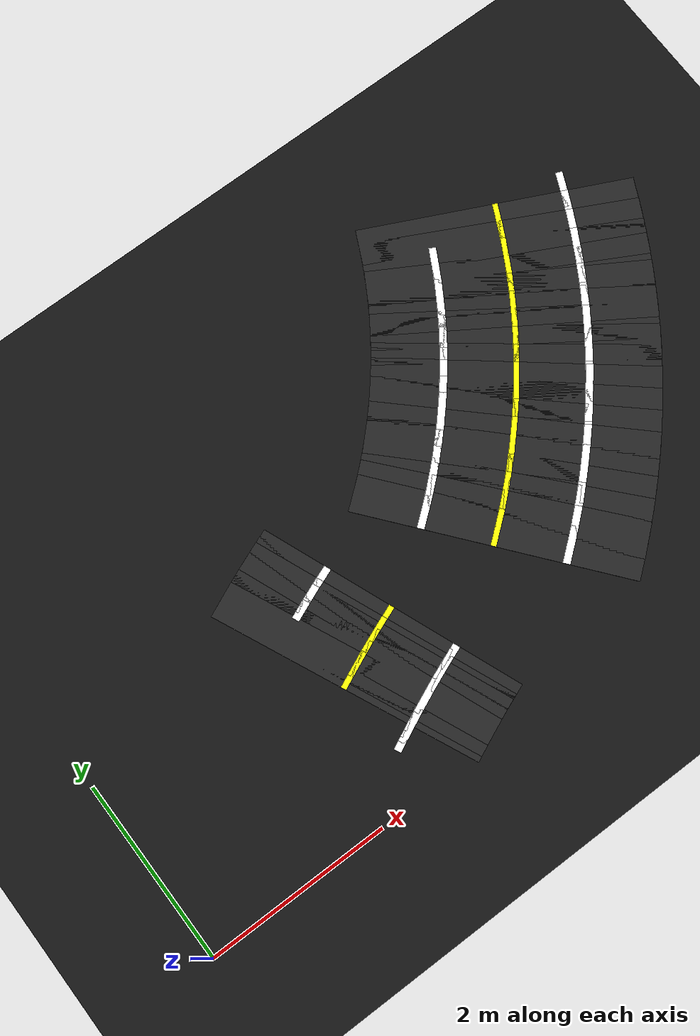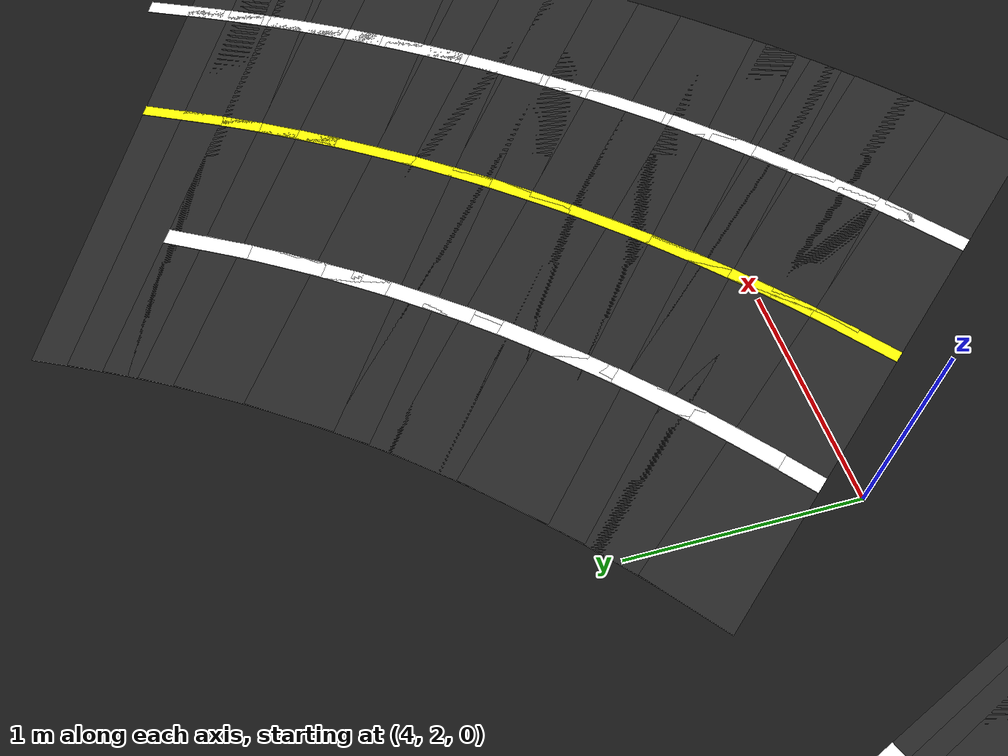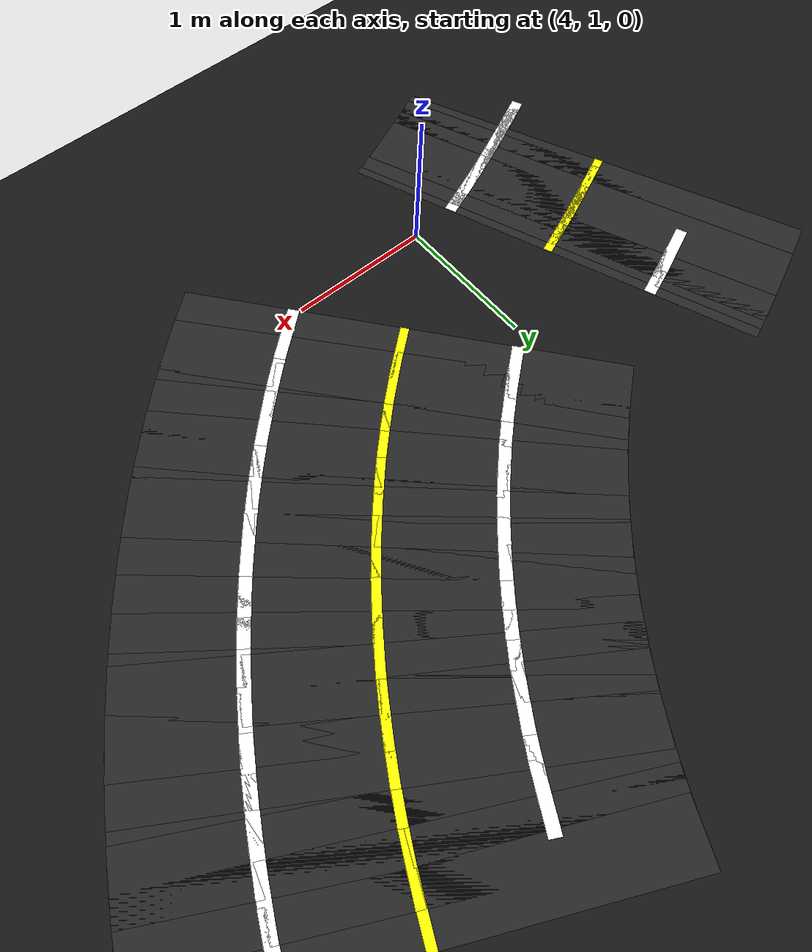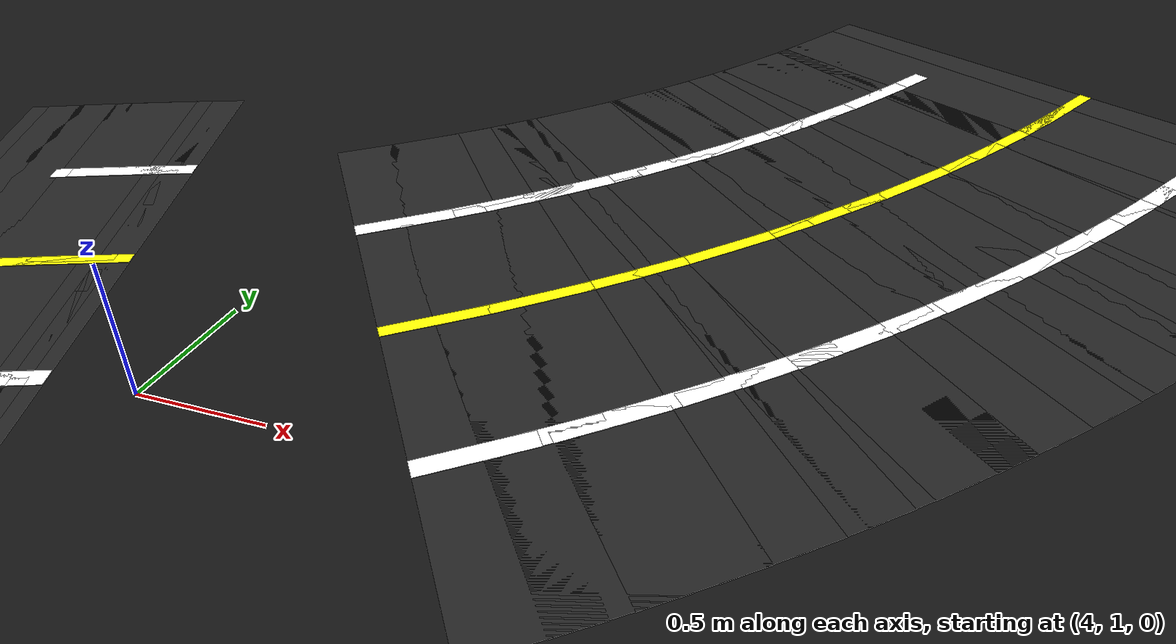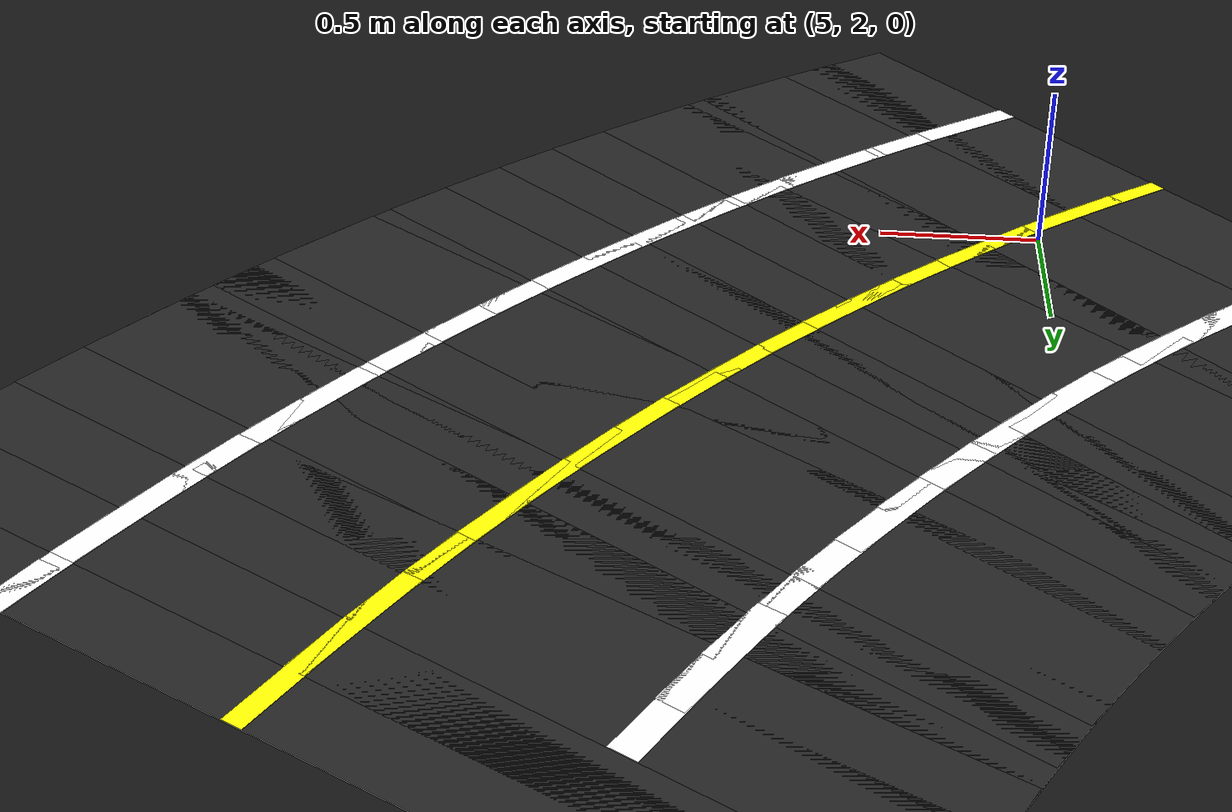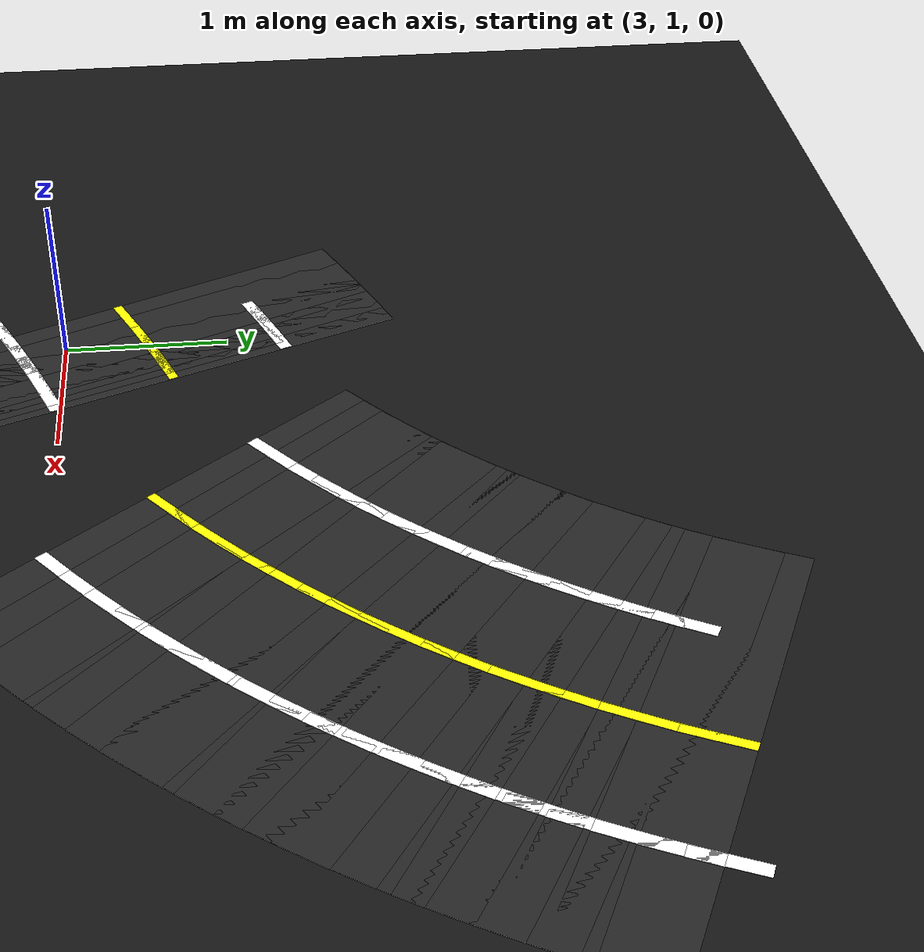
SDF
<sdf version="1.6">
 <world name="figure8_world">
  <model name="ground_plane">
   <static>true</static>
   <link name="link">
    <collision name="collision">
     <geometry><plane><normal>0 0 1</normal><size>120 120</size></plane></geometry>
    </collision>
    <visual name="visual">
     <geometry><plane><normal>0 0 1</normal><size>120 120</size></plane></geometry>
     <material><ambient>0.08 0.08 0.08 1</ambient><diffuse>0.08 0.08 0.08 1</diffuse></material>
    </visual>
   </link>
  </model>
  <model name="seg_00620">
   <static>true</static>
   <pose>4.7199 1.6714 0.0010 0 0 6.9639</pose>
   <link name="link">
    <collision name="collision"><geometry><box><size>0.4000 3.0000 0.002</size></box></geometry></collision>
    <visual name="visual">
     <geometry><box><size>0.4000 3.0000 0.002</size></box></geometry>
     <material><ambient>0.14 0.14 0.14 1</ambient><diffuse>0.14 0.14 0.14 1</diffuse></material>
    </visual>
   </link>
  </model>
  <model name="seg_00621">
   <static>true</static>
   <pose>5.1919 1.0885 0.0030 0 0 6.9639</pose>
   <link name="link">
    <collision name="collision"><geometry><box><size>0.4000 0.0800 0.002</size></box></geometry></collision>
    <visual name="visual">
     <geometry><box><size>0.4000 0.0800 0.002</size></box></geometry>
     <material><ambient>1 1 1 1</ambient><diffuse>1 1 1 1</diffuse></material>
    </visual>
   </link>
  </model>
  <model name="seg_00622">
   <static>true</static>
   <pose>4.2479 2.2543 0.0030 0 0 6.9639</pose>
   <link name="link">
    <collision name="collision"><geometry><box><size>0.4000 0.0800 0.002</size></box></geometry></collision>
    <visual name="visual">
     <geometry><box><size>0.4000 0.0800 0.002</size></box></geometry>
     <material><ambient>1 1 1 1</ambient><diffuse>1 1 1 1</diffuse></material>
    </visual>
   </link>
  </model>
  <model name="seg_00623">
   <static>true</static>
   <pose>4.7199 1.6714 0.0030 0 0 6.9639</pose>
   <link name="link">
    <collision name="collision"><geometry><box><size>0.4000 0.0600 0.002</size></box></geometry></collision>
    <visual name="visual">
     <geometry><box><size>0.4000 0.0600 0.002</size></box></geometry>
     <material><ambient>1 1 0 1</ambient><diffuse>1 1 0 1</diffuse></material>
    </visual>
   </link>
  </model>
  <model name="seg_00624">
   <static>true</static>
   <pose>4.8709 1.7970 0.0010 0 0 6.9900</pose>
   <link name="link">
    <collision name="collision"><geometry><box><size>0.4000 3.0000 0.002</size></box></geometry></collision>
    <visual name="visual">
     <geometry><box><size>0.4000 3.0000 0.002</size></box></geometry>
     <material><ambient>0.14 0.14 0.14 1</ambient><diffuse>0.14 0.14 0.14 1</diffuse></material>
    </visual>
   </link>
  </model>
  <model name="seg_00625">
   <static>true</static>
   <pose>5.3579 1.2267 0.0030 0 0 6.9900</pose>
   <link name="link">
    <collision name="collision"><geometry><box><size>0.4000 0.0800 0.002</size></box></geometry></collision>
    <visual name="visual">
     <geometry><box><size>0.4000 0.0800 0.002</size></box></geometry>
     <material><ambient>1 1 1 1</ambient><diffuse>1 1 1 1</diffuse></material>
    </visual>
   </link>
  </model>
  <model name="seg_00626">
   <static>true</static>
   <pose>4.3838 2.3673 0.0030 0 0 6.9900</pose>
   <link name="link">
    <collision name="collision"><geometry><box><size>0.4000 0.0800 0.002</size></box></geometry></collision>
    <visual name="visual">
     <geometry><box><size>0.4000 0.0800 0.002</size></box></geometry>
     <material><ambient>1 1 1 1</ambient><diffuse>1 1 1 1</diffuse></material>
    </visual>
   </link>
  </model>
  <model name="seg_00627">
   <static>true</static>
   <pose>4.8709 1.7970 0.0030 0 0 6.9900</pose>
   <link name="link">
    <collision name="collision"><geometry><box><size>0.4000 0.0600 0.002</size></box></geometry></collision>
    <visual name="visual">
     <geometry><box><size>0.4000 0.0600 0.002</size></box></geometry>
     <material><ambient>1 1 0 1</ambient><diffuse>1 1 0 1</diffuse></material>
    </visual>
   </link>
  </model>
  <model name="seg_00628">
   <static>true</static>
   <pose>5.0185 1.9264 0.0010 0 0 7.0162</pose>
   <link name="link">
    <collision name="collision"><geometry><box><size>0.4000 3.0000 0.002</size></box></geometry></collision>
    <visual name="visual">
     <geometry><box><size>0.4000 3.0000 0.002</size></box></geometry>
     <material><ambient>0.14 0.14 0.14 1</ambient><diffuse>0.14 0.14 0.14 1</diffuse></material>
    </visual>
   </link>
  </model>
  <model name="seg_00629">
   <static>true</static>
   <pose>5.5203 1.3691 0.0030 0 0 7.0162</pose>
   <link name="link">
    <collision name="collision"><geometry><box><size>0.4000 0.0800 0.002</size></box></geometry></collision>
    <visual name="visual">
     <geometry><box><size>0.4000 0.0800 0.002</size></box></geometry>
     <material><ambient>1 1 1 1</ambient><diffuse>1 1 1 1</diffuse></material>
    </visual>
   </link>
  </model>
  <model name="seg_00630">
   <static>true</static>
   <pose>4.5166 2.4838 0.0030 0 0 7.0162</pose>
   <link name="link">
    <collision name="collision"><geometry><box><size>0.4000 0.0800 0.002</size></box></geometry></collision>
    <visual name="visual">
     <geometry><box><size>0.4000 0.0800 0.002</size></box></geometry>
     <material><ambient>1 1 1 1</ambient><diffuse>1 1 1 1</diffuse></material>
    </visual>
   </link>
  </model>
  <model name="seg_00631">
   <static>true</static>
   <pose>5.0185 1.9264 0.0030 0 0 7.0162</pose>
   <link name="link">
    <collision name="collision"><geometry><box><size>0.4000 0.0600 0.002</size></box></geometry></collision>
    <visual name="visual">
     <geometry><box><size>0.4000 0.0600 0.002</size></box></geometry>
     <material><ambient>1 1 0 1</ambient><diffuse>1 1 0 1</diffuse></material>
    </visual>
   </link>
  </model>
  <model name="seg_00632">
   <static>true</static>
   <pose>5.1627 2.0597 0.0010 0 0 7.0424</pose>
   <link name="link">
    <collision name="collision"><geometry><box><size>0.4000 3.0000 0.002</size></box></geometry></collision>
    <visual name="visual">
     <geometry><box><size>0.4000 3.0000 0.002</size></box></geometry>
     <material><ambient>0.14 0.14 0.14 1</ambient><diffuse>0.14 0.14 0.14 1</diffuse></material>
    </visual>
   </link>
  </model>
  <model name="seg_00633">
   <static>true</static>
   <pose>5.6789 1.5157 0.0030 0 0 7.0424</pose>
   <link name="link">
    <collision name="collision"><geometry><box><size>0.4000 0.0800 0.002</size></box></geometry></collision>
    <visual name="visual">
     <geometry><box><size>0.4000 0.0800 0.002</size></box></geometry>
     <material><ambient>1 1 1 1</ambient><diffuse>1 1 1 1</diffuse></material>
    </visual>
   </link>
  </model>
  <model name="seg_00634">
   <static>true</static>
   <pose>4.6464 2.6037 0.0030 0 0 7.0424</pose>
   <link name="link">
    <collision name="collision"><geometry><box><size>0.4000 0.0800 0.002</size></box></geometry></collision>
    <visual name="visual">
     <geometry><box><size>0.4000 0.0800 0.002</size></box></geometry>
     <material><ambient>1 1 1 1</ambient><diffuse>1 1 1 1</diffuse></material>
    </visual>
   </link>
  </model>
  <model name="seg_00635">
   <static>true</static>
   <pose>5.1627 2.0597 0.0030 0 0 7.0424</pose>
   <link name="link">
    <collision name="collision"><geometry><box><size>0.4000 0.0600 0.002</size></box></geometry></collision>
    <visual name="visual">
     <geometry><box><size>0.4000 0.0600 0.002</size></box></geometry>
     <material><ambient>1 1 0 1</ambient><diffuse>1 1 0 1</diffuse></material>
    </visual>
   </link>
  </model>
  <model name="seg_00636">
   <static>true</static>
   <pose>5.3033 2.1967 0.0010 0 0 7.0686</pose>
   <link name="link">
    <collision name="collision"><geometry><box><size>0.4000 3.0000 0.002</size></box></geometry></collision>
    <visual name="visual">
     <geometry><box><size>0.4000 3.0000 0.002</size></box></geometry>
     <material><ambient>0.14 0.14 0.14 1</ambient><diffuse>0.14 0.14 0.14 1</diffuse></material>
    </visual>
   </link>
  </model>
  <model name="seg_00637">
   <static>true</static>
   <pose>5.8336 1.6664 0.0030 0 0 7.0686</pose>
   <link name="link">
    <collision name="collision"><geometry><box><size>0.4000 0.0800 0.002</size></box></geometry></collision>
    <visual name="visual">
     <geometry><box><size>0.4000 0.0800 0.002</size></box></geometry>
     <material><ambient>1 1 1 1</ambient><diffuse>1 1 1 1</diffuse></material>
    </visual>
   </link>
  </model>
  <model name="seg_00638">
   <static>true</static>
   <pose>4.7730 2.7270 0.0030 0 0 7.0686</pose>
   <link name="link">
    <collision name="collision"><geometry><box><size>0.4000 0.0800 0.002</size></box></geometry></collision>
    <visual name="visual">
     <geometry><box><size>0.4000 0.0800 0.002</size></box></geometry>
     <material><ambient>1 1 1 1</ambient><diffuse>1 1 1 1</diffuse></material>
    </visual>
   </link>
  </model>
  <model name="seg_00639">
   <static>true</static>
   <pose>5.3033 2.1967 0.0030 0 0 7.0686</pose>
   <link name="link">
    <collision name="collision"><geometry><box><size>0.4000 0.0600 0.002</size></box></geometry></collision>
    <visual name="visual">
     <geometry><box><size>0.4000 0.0600 0.002</size></box></geometry>
     <material><ambient>1 1 0 1</ambient><diffuse>1 1 0 1</diffuse></material>
    </visual>
   </link>
  </model>
  <model name="seg_00640">
   <static>true</static>
   <pose>5.4403 2.3373 0.0010 0 0 7.0948</pose>
   <link name="link">
    <collision name="collision"><geometry><box><size>0.4000 3.0000 0.002</size></box></geometry></collision>
    <visual name="visual">
     <geometry><box><size>0.4000 3.0000 0.002</size></box></geometry>
     <material><ambient>0.14 0.14 0.14 1</ambient><diffuse>0.14 0.14 0.14 1</diffuse></material>
    </visual>
   </link>
  </model>
  <model name="seg_00641">
   <static>true</static>
   <pose>5.9843 1.8211 0.0030 0 0 7.0948</pose>
   <link name="link">
    <collision name="collision"><geometry><box><size>0.4000 0.0800 0.002</size></box></geometry></collision>
    <visual name="visual">
     <geometry><box><size>0.4000 0.0800 0.002</size></box></geometry>
     <material><ambient>1 1 1 1</ambient><diffuse>1 1 1 1</diffuse></material>
    </visual>
   </link>
  </model>
  <model name="seg_00642">
   <static>true</static>
   <pose>4.8963 2.8536 0.0030 0 0 7.0948</pose>
   <link name="link">
    <collision name="collision"><geometry><box><size>0.4000 0.0800 0.002</size></box></geometry></collision>
    <visual name="visual">
     <geometry><box><size>0.4000 0.0800 0.002</size></box></geometry>
     <material><ambient>1 1 1 1</ambient><diffuse>1 1 1 1</diffuse></material>
    </visual>
   </link>
  </model>
  <model name="seg_00643">
   <static>true</static>
   <pose>5.4403 2.3373 0.0030 0 0 7.0948</pose>
   <link name="link">
    <collision name="collision"><geometry><box><size>0.4000 0.0600 0.002</size></box></geometry></collision>
    <visual name="visual">
     <geometry><box><size>0.4000 0.0600 0.002</size></box></geometry>
     <material><ambient>1 1 0 1</ambient><diffuse>1 1 0 1</diffuse></material>
    </visual>
   </link>
  </model>
  <model name="seg_00644">
   <static>true</static>
   <pose>5.5736 2.4815 0.0010 0 0 7.1209</pose>
   <link name="link">
    <collision name="collision"><geometry><box><size>0.4000 3.0000 0.002</size></box></geometry></collision>
    <visual name="visual">
     <geometry><box><size>0.4000 3.0000 0.002</size></box></geometry>
     <material><ambient>0.14 0.14 0.14 1</ambient><diffuse>0.14 0.14 0.14 1</diffuse></material>
    </visual>
   </link>
  </model>
  <model name="seg_00645">
   <static>true</static>
   <pose>6.1309 1.9797 0.0030 0 0 7.1209</pose>
   <link name="link">
    <collision name="collision"><geometry><box><size>0.4000 0.0800 0.002</size></box></geometry></collision>
    <visual name="visual">
     <geometry><box><size>0.4000 0.0800 0.002</size></box></geometry>
     <material><ambient>1 1 1 1</ambient><diffuse>1 1 1 1</diffuse></material>
    </visual>
   </link>
  </model>
  <model name="seg_00646">
   <static>true</static>
   <pose>5.0162 2.9834 0.0030 0 0 7.1209</pose>
   <link name="link">
    <collision name="collision"><geometry><box><size>0.4000 0.0800 0.002</size></box></geometry></collision>
    <visual name="visual">
     <geometry><box><size>0.4000 0.0800 0.002</size></box></geometry>
     <material><ambient>1 1 1 1</ambient><diffuse>1 1 1 1</diffuse></material>
    </visual>
   </link>
  </model>
  <model name="seg_00647">
   <static>true</static>
   <pose>5.5736 2.4815 0.0030 0 0 7.1209</pose>
   <link name="link">
    <collision name="collision"><geometry><box><size>0.4000 0.0600 0.002</size></box></geometry></collision>
    <visual name="visual">
     <geometry><box><size>0.4000 0.0600 0.002</size></box></geometry>
     <material><ambient>1 1 0 1</ambient><diffuse>1 1 0 1</diffuse></material>
    </visual>
   </link>
  </model>
  <model name="seg_00648">
   <static>true</static>
   <pose>5.7030 2.6291 0.0010 0 0 7.1471</pose>
   <link name="link">
    <collision name="collision"><geometry><box><size>0.4000 3.0000 0.002</size></box></geometry></collision>
    <visual name="visual">
     <geometry><box><size>0.4000 3.0000 0.002</size></box></geometry>
     <material><ambient>0.14 0.14 0.14 1</ambient><diffuse>0.14 0.14 0.14 1</diffuse></material>
    </visual>
   </link>
  </model>
  <model name="seg_00649">
   <static>true</static>
   <pose>6.2733 2.1421 0.0030 0 0 7.1471</pose>
   <link name="link">
    <collision name="collision"><geometry><box><size>0.4000 0.0800 0.002</size></box></geometry></collision>
    <visual name="visual">
     <geometry><box><size>0.4000 0.0800 0.002</size></box></geometry>
     <material><ambient>1 1 1 1</ambient><diffuse>1 1 1 1</diffuse></material>
    </visual>
   </link>
  </model>
  <model name="seg_00650">
   <static>true</static>
   <pose>5.1327 3.1162 0.0030 0 0 7.1471</pose>
   <link name="link">
    <collision name="collision"><geometry><box><size>0.4000 0.0800 0.002</size></box></geometry></collision>
    <visual name="visual">
     <geometry><box><size>0.4000 0.0800 0.002</size></box></geometry>
     <material><ambient>1 1 1 1</ambient><diffuse>1 1 1 1</diffuse></material>
    </visual>
   </link>
  </model>
  <model name="seg_00651">
   <static>true</static>
   <pose>5.7030 2.6291 0.0030 0 0 7.1471</pose>
   <link name="link">
    <collision name="collision"><geometry><box><size>0.4000 0.0600 0.002</size></box></geometry></collision>
    <visual name="visual">
     <geometry><box><size>0.4000 0.0600 0.002</size></box></geometry>
     <material><ambient>1 1 0 1</ambient><diffuse>1 1 0 1</diffuse></material>
    </visual>
   </link>
  </model>
  <model name="seg_00652">
   <static>true</static>
   <pose>5.8286 2.7801 0.0010 0 0 7.1733</pose>
   <link name="link">
    <collision name="collision"><geometry><box><size>0.4000 3.0000 0.002</size></box></geometry></collision>
    <visual name="visual">
     <geometry><box><size>0.4000 3.0000 0.002</size></box></geometry>
     <material><ambient>0.14 0.14 0.14 1</ambient><diffuse>0.14 0.14 0.14 1</diffuse></material>
    </visual>
   </link>
  </model>
  <model name="seg_00653">
   <static>true</static>
   <pose>6.4115 2.3081 0.0030 0 0 7.1733</pose>
   <link name="link">
    <collision name="collision"><geometry><box><size>0.4000 0.0800 0.002</size></box></geometry></collision>
    <visual name="visual">
     <geometry><box><size>0.4000 0.0800 0.002</size></box></geometry>
     <material><ambient>1 1 1 1</ambient><diffuse>1 1 1 1</diffuse></material>
    </visual>
   </link>
  </model>
  <model name="seg_00654">
   <static>true</static>
   <pose>5.2457 3.2521 0.0030 0 0 7.1733</pose>
   <link name="link">
    <collision name="collision"><geometry><box><size>0.4000 0.0800 0.002</size></box></geometry></collision>
    <visual name="visual">
     <geometry><box><size>0.4000 0.0800 0.002</size></box></geometry>
     <material><ambient>1 1 1 1</ambient><diffuse>1 1 1 1</diffuse></material>
    </visual>
   </link>
  </model>
  <model name="seg_00655">
   <static>true</static>
   <pose>5.8286 2.7801 0.0030 0 0 7.1733</pose>
   <link name="link">
    <collision name="collision"><geometry><box><size>0.4000 0.0600 0.002</size></box></geometry></collision>
    <visual name="visual">
     <geometry><box><size>0.4000 0.0600 0.002</size></box></geometry>
     <material><ambient>1 1 0 1</ambient><diffuse>1 1 0 1</diffuse></material>
    </visual>
   </link>
  </model>
  <model name="seg_00656">
   <static>true</static>
   <pose>5.9502 2.9343 0.0010 0 0 7.1995</pose>
   <link name="link">
    <collision name="collision"><geometry><box><size>0.4000 3.0000 0.002</size></box></geometry></collision>
    <visual name="visual">
     <geometry><box><size>0.4000 3.0000 0.002</size></box></geometry>
     <material><ambient>0.14 0.14 0.14 1</ambient><diffuse>0.14 0.14 0.14 1</diffuse></material>
    </visual>
   </link>
  </model>
  <model name="seg_00657">
   <static>true</static>
   <pose>6.5452 2.4777 0.0030 0 0 7.1995</pose>
   <link name="link">
    <collision name="collision"><geometry><box><size>0.4000 0.0800 0.002</size></box></geometry></collision>
    <visual name="visual">
     <geometry><box><size>0.4000 0.0800 0.002</size></box></geometry>
     <material><ambient>1 1 1 1</ambient><diffuse>1 1 1 1</diffuse></material>
    </visual>
   </link>
  </model>
  <model name="seg_00658">
   <static>true</static>
   <pose>5.3551 3.3909 0.0030 0 0 7.1995</pose>
   <link name="link">
    <collision name="collision"><geometry><box><size>0.4000 0.0800 0.002</size></box></geometry></collision>
    <visual name="visual">
     <geometry><box><size>0.4000 0.0800 0.002</size></box></geometry>
     <material><ambient>1 1 1 1</ambient><diffuse>1 1 1 1</diffuse></material>
    </visual>
   </link>
  </model>
  <model name="seg_00659">
   <static>true</static>
   <pose>5.9502 2.9343 0.0030 0 0 7.1995</pose>
   <link name="link">
    <collision name="collision"><geometry><box><size>0.4000 0.0600 0.002</size></box></geometry></collision>
    <visual name="visual">
     <geometry><box><size>0.4000 0.0600 0.002</size></box></geometry>
     <material><ambient>1 1 0 1</ambient><diffuse>1 1 0 1</diffuse></material>
    </visual>
   </link>
  </model>
  <model name="seg_00660">
   <static>true</static>
   <pose>6.0676 3.0916 0.0010 0 0 7.2257</pose>
   <link name="link">
    <collision name="collision"><geometry><box><size>0.4000 3.0000 0.002</size></box></geometry></collision>
    <visual name="visual">
     <geometry><box><size>0.4000 3.0000 0.002</size></box></geometry>
     <material><ambient>0.14 0.14 0.14 1</ambient><diffuse>0.14 0.14 0.14 1</diffuse></material>
    </visual>
   </link>
  </model>
  <model name="seg_00661">
   <static>true</static>
   <pose>6.6744 2.6508 0.0030 0 0 7.2257</pose>
   <link name="link">
    <collision name="collision"><geometry><box><size>0.4000 0.0800 0.002</size></box></geometry></collision>
    <visual name="visual">
     <geometry><box><size>0.4000 0.0800 0.002</size></box></geometry>
     <material><ambient>1 1 1 1</ambient><diffuse>1 1 1 1</diffuse></material>
    </visual>
   </link>
  </model>
  <model name="seg_00662">
   <static>true</static>
   <pose>5.4609 3.5324 0.0030 0 0 7.2257</pose>
   <link name="link">
    <collision name="collision"><geometry><box><size>0.4000 0.0800 0.002</size></box></geometry></collision>
    <visual name="visual">
     <geometry><box><size>0.4000 0.0800 0.002</size></box></geometry>
     <material><ambient>1 1 1 1</ambient><diffuse>1 1 1 1</diffuse></material>
    </visual>
   </link>
  </model>
  <model name="seg_00663">
   <static>true</static>
   <pose>6.0676 3.0916 0.0030 0 0 7.2257</pose>
   <link name="link">
    <collision name="collision"><geometry><box><size>0.4000 0.0600 0.002</size></box></geometry></collision>
    <visual name="visual">
     <geometry><box><size>0.4000 0.0600 0.002</size></box></geometry>
     <material><ambient>1 1 0 1</ambient><diffuse>1 1 0 1</diffuse></material>
    </visual>
   </link>
  </model>
  <model name="seg_00664">
   <static>true</static>
   <pose>6.1809 3.2520 0.0010 0 0 7.2518</pose>
   <link name="link">
    <collision name="collision"><geometry><box><size>0.4000 3.0000 0.002</size></box></geometry></collision>
    <visual name="visual">
     <geometry><box><size>0.4000 3.0000 0.002</size></box></geometry>
     <material><ambient>0.14 0.14 0.14 1</ambient><diffuse>0.14 0.14 0.14 1</diffuse></material>
    </visual>
   </link>
  </model>
  <model name="seg_00665">
   <static>true</static>
   <pose>6.7990 2.8271 0.0030 0 0 7.2518</pose>
   <link name="link">
    <collision name="collision"><geometry><box><size>0.4000 0.0800 0.002</size></box></geometry></collision>
    <visual name="visual">
     <geometry><box><size>0.4000 0.0800 0.002</size></box></geometry>
     <material><ambient>1 1 1 1</ambient><diffuse>1 1 1 1</diffuse></material>
    </visual>
   </link>
  </model>
  <model name="seg_00666">
   <static>true</static>
   <pose>5.5629 3.6768 0.0030 0 0 7.2518</pose>
   <link name="link">
    <collision name="collision"><geometry><box><size>0.4000 0.0800 0.002</size></box></geometry></collision>
    <visual name="visual">
     <geometry><box><size>0.4000 0.0800 0.002</size></box></geometry>
     <material><ambient>1 1 1 1</ambient><diffuse>1 1 1 1</diffuse></material>
    </visual>
   </link>
  </model>
  <model name="seg_00667">
   <static>true</static>
   <pose>6.1809 3.2520 0.0030 0 0 7.2518</pose>
   <link name="link">
    <collision name="collision"><geometry><box><size>0.4000 0.0600 0.002</size></box></geometry></collision>
    <visual name="visual">
     <geometry><box><size>0.4000 0.0600 0.002</size></box></geometry>
     <material><ambient>1 1 0 1</ambient><diffuse>1 1 0 1</diffuse></material>
    </visual>
   </link>
  </model>
  <model name="seg_00668">
   <static>true</static>
   <pose>6.2900 3.4152 0.0010 0 0 7.2780</pose>
   <link name="link">
    <collision name="collision"><geometry><box><size>0.4000 3.0000 0.002</size></box></geometry></collision>
    <visual name="visual">
     <geometry><box><size>0.4000 3.0000 0.002</size></box></geometry>
     <material><ambient>0.14 0.14 0.14 1</ambient><diffuse>0.14 0.14 0.14 1</diffuse></material>
    </visual>
   </link>
  </model>
  <model name="seg_00669">
   <static>true</static>
   <pose>6.9190 3.0067 0.0030 0 0 7.2780</pose>
   <link name="link">
    <collision name="collision"><geometry><box><size>0.4000 0.0800 0.002</size></box></geometry></collision>
    <visual name="visual">
     <geometry><box><size>0.4000 0.0800 0.002</size></box></geometry>
     <material><ambient>1 1 1 1</ambient><diffuse>1 1 1 1</diffuse></material>
    </visual>
   </link>
  </model>
  <model name="seg_00670">
   <static>true</static>
   <pose>5.6610 3.8237 0.0030 0 0 7.2780</pose>
   <link name="link">
    <collision name="collision"><geometry><box><size>0.4000 0.0800 0.002</size></box></geometry></collision>
    <visual name="visual">
     <geometry><box><size>0.4000 0.0800 0.002</size></box></geometry>
     <material><ambient>1 1 1 1</ambient><diffuse>1 1 1 1</diffuse></material>
    </visual>
   </link>
  </model>
  <model name="seg_00671">
   <static>true</static>
   <pose>6.2900 3.4152 0.0030 0 0 7.2780</pose>
   <link name="link">
    <collision name="collision"><geometry><box><size>0.4000 0.0600 0.002</size></box></geometry></collision>
    <visual name="visual">
     <geometry><box><size>0.4000 0.0600 0.002</size></box></geometry>
     <material><ambient>1 1 0 1</ambient><diffuse>1 1 0 1</diffuse></material>
    </visual>
   </link>
  </model>
  <model name="seg_00672">
   <static>true</static>
   <pose>6.3948 3.5813 0.0010 0 0 7.3042</pose>
   <link name="link">
    <collision name="collision"><geometry><box><size>0.4000 3.0000 0.002</size></box></geometry></collision>
    <visual name="visual">
     <geometry><box><size>0.4000 3.0000 0.002</size></box></geometry>
     <material><ambient>0.14 0.14 0.14 1</ambient><diffuse>0.14 0.14 0.14 1</diffuse></material>
    </visual>
   </link>
  </model>
  <model name="seg_00673">
   <static>true</static>
   <pose>7.0343 3.1894 0.0030 0 0 7.3042</pose>
   <link name="link">
    <collision name="collision"><geometry><box><size>0.4000 0.0800 0.002</size></box></geometry></collision>
    <visual name="visual">
     <geometry><box><size>0.4000 0.0800 0.002</size></box></geometry>
     <material><ambient>1 1 1 1</ambient><diffuse>1 1 1 1</diffuse></material>
    </visual>
   </link>
  </model>
  <model name="seg_00674">
   <static>true</static>
   <pose>5.7553 3.9731 0.0030 0 0 7.3042</pose>
   <link name="link">
    <collision name="collision"><geometry><box><size>0.4000 0.0800 0.002</size></box></geometry></collision>
    <visual name="visual">
     <geometry><box><size>0.4000 0.0800 0.002</size></box></geometry>
     <material><ambient>1 1 1 1</ambient><diffuse>1 1 1 1</diffuse></material>
    </visual>
   </link>
  </model>
  <model name="seg_00675">
   <static>true</static>
   <pose>6.3948 3.5813 0.0030 0 0 7.3042</pose>
   <link name="link">
    <collision name="collision"><geometry><box><size>0.4000 0.0600 0.002</size></box></geometry></collision>
    <visual name="visual">
     <geometry><box><size>0.4000 0.0600 0.002</size></box></geometry>
     <material><ambient>1 1 0 1</ambient><diffuse>1 1 0 1</diffuse></material>
    </visual>
   </link>
  </model>
  <model name="seg_00676">
   <static>true</static>
   <pose>6.4952 3.7500 0.0010 0 0 7.3304</pose>
   <link name="link">
    <collision name="collision"><geometry><box><size>0.4000 3.0000 0.002</size></box></geometry></collision>
    <visual name="visual">
     <geometry><box><size>0.4000 3.0000 0.002</size></box></geometry>
     <material><ambient>0.14 0.14 0.14 1</ambient><diffuse>0.14 0.14 0.14 1</diffuse></material>
    </visual>
   </link>
  </model>
  <model name="seg_00677">
   <static>true</static>
   <pose>7.1447 3.3750 0.0030 0 0 7.3304</pose>
   <link name="link">
    <collision name="collision"><geometry><box><size>0.4000 0.0800 0.002</size></box></geometry></collision>
    <visual name="visual">
     <geometry><box><size>0.4000 0.0800 0.002</size></box></geometry>
     <material><ambient>1 1 1 1</ambient><diffuse>1 1 1 1</diffuse></material>
    </visual>
   </link>
  </model>
  <model name="seg_00678">
   <static>true</static>
   <pose>5.8457 4.1250 0.0030 0 0 7.3304</pose>
   <link name="link">
    <collision name="collision"><geometry><box><size>0.4000 0.0800 0.002</size></box></geometry></collision>
    <visual name="visual">
     <geometry><box><size>0.4000 0.0800 0.002</size></box></geometry>
     <material><ambient>1 1 1 1</ambient><diffuse>1 1 1 1</diffuse></material>
    </visual>
   </link>
  </model>
  <model name="seg_00679">
   <static>true</static>
   <pose>6.4952 3.7500 0.0030 0 0 7.3304</pose>
   <link name="link">
    <collision name="collision"><geometry><box><size>0.4000 0.0600 0.002</size></box></geometry></collision>
    <visual name="visual">
     <geometry><box><size>0.4000 0.0600 0.002</size></box></geometry>
     <material><ambient>1 1 0 1</ambient><diffuse>1 1 0 1</diffuse></material>
    </visual>
   </link>
  </model>
  <model name="seg_00680">
   <static>true</static>
   <pose>6.5911 3.9213 0.0010 0 0 7.3566</pose>
   <link name="link">
    <collision name="collision"><geometry><box><size>0.4000 3.0000 0.002</size></box></geometry></collision>
    <visual name="visual">
     <geometry><box><size>0.4000 3.0000 0.002</size></box></geometry>
     <material><ambient>0.14 0.14 0.14 1</ambient><diffuse>0.14 0.14 0.14 1</diffuse></material>
    </visual>
   </link>
  </model>
  <model name="seg_00681">
   <static>true</static>
   <pose>7.2502 3.5634 0.0030 0 0 7.3566</pose>
   <link name="link">
    <collision name="collision"><geometry><box><size>0.4000 0.0800 0.002</size></box></geometry></collision>
    <visual name="visual">
     <geometry><box><size>0.4000 0.0800 0.002</size></box></geometry>
     <material><ambient>1 1 1 1</ambient><diffuse>1 1 1 1</diffuse></material>
    </visual>
   </link>
  </model>
  <model name="seg_00682">
   <static>true</static>
   <pose>5.9320 4.2792 0.0030 0 0 7.3566</pose>
   <link name="link">
    <collision name="collision"><geometry><box><size>0.4000 0.0800 0.002</size></box></geometry></collision>
    <visual name="visual">
     <geometry><box><size>0.4000 0.0800 0.002</size></box></geometry>
     <material><ambient>1 1 1 1</ambient><diffuse>1 1 1 1</diffuse></material>
    </visual>
   </link>
  </model>
  <model name="seg_00683">
   <static>true</static>
   <pose>6.5911 3.9213 0.0030 0 0 7.3566</pose>
   <link name="link">
    <collision name="collision"><geometry><box><size>0.4000 0.0600 0.002</size></box></geometry></collision>
    <visual name="visual">
     <geometry><box><size>0.4000 0.0600 0.002</size></box></geometry>
     <material><ambient>1 1 0 1</ambient><diffuse>1 1 0 1</diffuse></material>
    </visual>
   </link>
  </model>
  <model name="seg_00684">
   <static>true</static>
   <pose>6.6825 4.0951 0.0010 0 0 7.3827</pose>
   <link name="link">
    <collision name="collision"><geometry><box><size>0.4000 3.0000 0.002</size></box></geometry></collision>
    <visual name="visual">
     <geometry><box><size>0.4000 3.0000 0.002</size></box></geometry>
     <material><ambient>0.14 0.14 0.14 1</ambient><diffuse>0.14 0.14 0.14 1</diffuse></material>
    </visual>
   </link>
  </model>
  <model name="seg_00685">
   <static>true</static>
   <pose>7.3508 3.7546 0.0030 0 0 7.3827</pose>
   <link name="link">
    <collision name="collision"><geometry><box><size>0.4000 0.0800 0.002</size></box></geometry></collision>
    <visual name="visual">
     <geometry><box><size>0.4000 0.0800 0.002</size></box></geometry>
     <material><ambient>1 1 1 1</ambient><diffuse>1 1 1 1</diffuse></material>
    </visual>
   </link>
  </model>
  <model name="seg_00687">
   <static>true</static>
   <pose>6.6825 4.0951 0.0030 0 0 7.3827</pose>
   <link name="link">
    <collision name="collision"><geometry><box><size>0.4000 0.0600 0.002</size></box></geometry></collision>
    <visual name="visual">
     <geometry><box><size>0.4000 0.0600 0.002</size></box></geometry>
     <material><ambient>1 1 0 1</ambient><diffuse>1 1 0 1</diffuse></material>
    </visual>
   </link>
  </model>
  <model name="seg_00688">
   <static>true</static>
   <pose>6.7694 4.2712 0.0010 0 0 7.4089</pose>
   <link name="link">
    <collision name="collision"><geometry><box><size>0.4000 3.0000 0.002</size></box></geometry></collision>
    <visual name="visual">
     <geometry><box><size>0.4000 3.0000 0.002</size></box></geometry>
     <material><ambient>0.14 0.14 0.14 1</ambient><diffuse>0.14 0.14 0.14 1</diffuse></material>
    </visual>
   </link>
  </model>
  <model name="seg_00689">
   <static>true</static>
   <pose>7.4463 3.9483 0.0030 0 0 7.4089</pose>
   <link name="link">
    <collision name="collision"><geometry><box><size>0.4000 0.0800 0.002</size></box></geometry></collision>
    <visual name="visual">
     <geometry><box><size>0.4000 0.0800 0.002</size></box></geometry>
     <material><ambient>1 1 1 1</ambient><diffuse>1 1 1 1</diffuse></material>
    </visual>
   </link>
  </model>
  <model name="seg_00691">
   <static>true</static>
   <pose>6.7694 4.2712 0.0030 0 0 7.4089</pose>
   <link name="link">
    <collision name="collision"><geometry><box><size>0.4000 0.0600 0.002</size></box></geometry></collision>
    <visual name="visual">
     <geometry><box><size>0.4000 0.0600 0.002</size></box></geometry>
     <material><ambient>1 1 0 1</ambient><diffuse>1 1 0 1</diffuse></material>
    </visual>
   </link>
  </model>
  <model name="seg_00693">
   <static>true</static>
   <pose>7.5368 4.1444 0.0030 0 0 7.4351</pose>
   <link name="link">
    <collision name="collision"><geometry><box><size>0.4000 0.0800 0.002</size></box></geometry></collision>
    <visual name="visual">
     <geometry><box><size>0.4000 0.0800 0.002</size></box></geometry>
     <material><ambient>1 1 1 1</ambient><diffuse>1 1 1 1</diffuse></material>
    </visual>
   </link>
  </model>
  <model name="seg_02174">
   <static>true</static>
   <pose>2.7430 0.5843 0.0030 0 0 0.4418</pose>
   <link name="link">
    <collision name="collision"><geometry><box><size>0.4000 0.0800 0.002</size></box></geometry></collision>
    <visual name="visual">
     <geometry><box><size>0.4000 0.0800 0.002</size></box></geometry>
     <material><ambient>1 1 1 1</ambient><diffuse>1 1 1 1</diffuse></material>
    </visual>
   </link>
  </model>
  <model name="seg_02178">
   <static>true</static>
   <pose>2.8084 0.6149 0.0030 0 0 0.4376</pose>
   <link name="link">
    <collision name="collision"><geometry><box><size>0.4000 0.0800 0.002</size></box></geometry></collision>
    <visual name="visual">
     <geometry><box><size>0.4000 0.0800 0.002</size></box></geometry>
     <material><ambient>1 1 1 1</ambient><diffuse>1 1 1 1</diffuse></material>
    </visual>
   </link>
  </model>
  <model name="seg_02182">
   <static>true</static>
   <pose>2.8731 0.6448 0.0030 0 0 0.4333</pose>
   <link name="link">
    <collision name="collision"><geometry><box><size>0.4000 0.0800 0.002</size></box></geometry></collision>
    <visual name="visual">
     <geometry><box><size>0.4000 0.0800 0.002</size></box></geometry>
     <material><ambient>1 1 1 1</ambient><diffuse>1 1 1 1</diffuse></material>
    </visual>
   </link>
  </model>
  <model name="seg_02186">
   <static>true</static>
   <pose>2.9371 0.6740 0.0030 0 0 0.4287</pose>
   <link name="link">
    <collision name="collision"><geometry><box><size>0.4000 0.0800 0.002</size></box></geometry></collision>
    <visual name="visual">
     <geometry><box><size>0.4000 0.0800 0.002</size></box></geometry>
     <material><ambient>1 1 1 1</ambient><diffuse>1 1 1 1</diffuse></material>
    </visual>
   </link>
  </model>
  <model name="seg_02188">
   <static>true</static>
   <pose>2.6918 1.3862 0.0010 0 0 0.4238</pose>
   <link name="link">
    <collision name="collision"><geometry><box><size>0.4000 3.0000 0.002</size></box></geometry></collision>
    <visual name="visual">
     <geometry><box><size>0.4000 3.0000 0.002</size></box></geometry>
     <material><ambient>0.14 0.14 0.14 1</ambient><diffuse>0.14 0.14 0.14 1</diffuse></material>
    </visual>
   </link>
  </model>
  <model name="seg_02190">
   <static>true</static>
   <pose>3.0003 0.7025 0.0030 0 0 0.4238</pose>
   <link name="link">
    <collision name="collision"><geometry><box><size>0.4000 0.0800 0.002</size></box></geometry></collision>
    <visual name="visual">
     <geometry><box><size>0.4000 0.0800 0.002</size></box></geometry>
     <material><ambient>1 1 1 1</ambient><diffuse>1 1 1 1</diffuse></material>
    </visual>
   </link>
  </model>
  <model name="seg_02191">
   <static>true</static>
   <pose>2.6918 1.3862 0.0030 0 0 0.4238</pose>
   <link name="link">
    <collision name="collision"><geometry><box><size>0.4000 0.0600 0.002</size></box></geometry></collision>
    <visual name="visual">
     <geometry><box><size>0.4000 0.0600 0.002</size></box></geometry>
     <material><ambient>1 1 0 1</ambient><diffuse>1 1 0 1</diffuse></material>
    </visual>
   </link>
  </model>
  <model name="seg_02192">
   <static>true</static>
   <pose>2.7577 1.4155 0.0010 0 0 0.4187</pose>
   <link name="link">
    <collision name="collision"><geometry><box><size>0.4000 3.0000 0.002</size></box></geometry></collision>
    <visual name="visual">
     <geometry><box><size>0.4000 3.0000 0.002</size></box></geometry>
     <material><ambient>0.14 0.14 0.14 1</ambient><diffuse>0.14 0.14 0.14 1</diffuse></material>
    </visual>
   </link>
  </model>
  <model name="seg_02194">
   <static>true</static>
   <pose>3.0626 0.7303 0.0030 0 0 0.4187</pose>
   <link name="link">
    <collision name="collision"><geometry><box><size>0.4000 0.0800 0.002</size></box></geometry></collision>
    <visual name="visual">
     <geometry><box><size>0.4000 0.0800 0.002</size></box></geometry>
     <material><ambient>1 1 1 1</ambient><diffuse>1 1 1 1</diffuse></material>
    </visual>
   </link>
  </model>
  <model name="seg_02195">
   <static>true</static>
   <pose>2.7577 1.4155 0.0030 0 0 0.4187</pose>
   <link name="link">
    <collision name="collision"><geometry><box><size>0.4000 0.0600 0.002</size></box></geometry></collision>
    <visual name="visual">
     <geometry><box><size>0.4000 0.0600 0.002</size></box></geometry>
     <material><ambient>1 1 0 1</ambient><diffuse>1 1 0 1</diffuse></material>
    </visual>
   </link>
  </model>
  <model name="seg_02196">
   <static>true</static>
   <pose>2.8229 1.4441 0.0010 0 0 0.4134</pose>
   <link name="link">
    <collision name="collision"><geometry><box><size>0.4000 3.0000 0.002</size></box></geometry></collision>
    <visual name="visual">
     <geometry><box><size>0.4000 3.0000 0.002</size></box></geometry>
     <material><ambient>0.14 0.14 0.14 1</ambient><diffuse>0.14 0.14 0.14 1</diffuse></material>
    </visual>
   </link>
  </model>
  <model name="seg_02198">
   <static>true</static>
   <pose>3.1242 0.7573 0.0030 0 0 0.4134</pose>
   <link name="link">
    <collision name="collision"><geometry><box><size>0.4000 0.0800 0.002</size></box></geometry></collision>
    <visual name="visual">
     <geometry><box><size>0.4000 0.0800 0.002</size></box></geometry>
     <material><ambient>1 1 1 1</ambient><diffuse>1 1 1 1</diffuse></material>
    </visual>
   </link>
  </model>
  <model name="seg_02199">
   <static>true</static>
   <pose>2.8229 1.4441 0.0030 0 0 0.4134</pose>
   <link name="link">
    <collision name="collision"><geometry><box><size>0.4000 0.0600 0.002</size></box></geometry></collision>
    <visual name="visual">
     <geometry><box><size>0.4000 0.0600 0.002</size></box></geometry>
     <material><ambient>1 1 0 1</ambient><diffuse>1 1 0 1</diffuse></material>
    </visual>
   </link>
  </model>
  <model name="seg_02200">
   <static>true</static>
   <pose>2.8875 1.4720 0.0010 0 0 0.4077</pose>
   <link name="link">
    <collision name="collision"><geometry><box><size>0.4000 3.0000 0.002</size></box></geometry></collision>
    <visual name="visual">
     <geometry><box><size>0.4000 3.0000 0.002</size></box></geometry>
     <material><ambient>0.14 0.14 0.14 1</ambient><diffuse>0.14 0.14 0.14 1</diffuse></material>
    </visual>
   </link>
  </model>
  <model name="seg_02202">
   <static>true</static>
   <pose>3.1849 0.7835 0.0030 0 0 0.4077</pose>
   <link name="link">
    <collision name="collision"><geometry><box><size>0.4000 0.0800 0.002</size></box></geometry></collision>
    <visual name="visual">
     <geometry><box><size>0.4000 0.0800 0.002</size></box></geometry>
     <material><ambient>1 1 1 1</ambient><diffuse>1 1 1 1</diffuse></material>
    </visual>
   </link>
  </model>
  <model name="seg_02203">
   <static>true</static>
   <pose>2.8875 1.4720 0.0030 0 0 0.4077</pose>
   <link name="link">
    <collision name="collision"><geometry><box><size>0.4000 0.0600 0.002</size></box></geometry></collision>
    <visual name="visual">
     <geometry><box><size>0.4000 0.0600 0.002</size></box></geometry>
     <material><ambient>1 1 0 1</ambient><diffuse>1 1 0 1</diffuse></material>
    </visual>
   </link>
  </model>
  <model name="seg_02204">
   <static>true</static>
   <pose>2.9514 1.4992 0.0010 0 0 0.4018</pose>
   <link name="link">
    <collision name="collision"><geometry><box><size>0.4000 3.0000 0.002</size></box></geometry></collision>
    <visual name="visual">
     <geometry><box><size>0.4000 3.0000 0.002</size></box></geometry>
     <material><ambient>0.14 0.14 0.14 1</ambient><diffuse>0.14 0.14 0.14 1</diffuse></material>
    </visual>
   </link>
  </model>
  <model name="seg_02206">
   <static>true</static>
   <pose>3.2447 0.8089 0.0030 0 0 0.4018</pose>
   <link name="link">
    <collision name="collision"><geometry><box><size>0.4000 0.0800 0.002</size></box></geometry></collision>
    <visual name="visual">
     <geometry><box><size>0.4000 0.0800 0.002</size></box></geometry>
     <material><ambient>1 1 1 1</ambient><diffuse>1 1 1 1</diffuse></material>
    </visual>
   </link>
  </model>
  <model name="seg_02207">
   <static>true</static>
   <pose>2.9514 1.4992 0.0030 0 0 0.4018</pose>
   <link name="link">
    <collision name="collision"><geometry><box><size>0.4000 0.0600 0.002</size></box></geometry></collision>
    <visual name="visual">
     <geometry><box><size>0.4000 0.0600 0.002</size></box></geometry>
     <material><ambient>1 1 0 1</ambient><diffuse>1 1 0 1</diffuse></material>
    </visual>
   </link>
  </model>
  <model name="seg_02208">
   <static>true</static>
   <pose>3.0146 1.5255 0.0010 0 0 0.3955</pose>
   <link name="link">
    <collision name="collision"><geometry><box><size>0.4000 3.0000 0.002</size></box></geometry></collision>
    <visual name="visual">
     <geometry><box><size>0.4000 3.0000 0.002</size></box></geometry>
     <material><ambient>0.14 0.14 0.14 1</ambient><diffuse>0.14 0.14 0.14 1</diffuse></material>
    </visual>
   </link>
  </model>
  <model name="seg_02209">
   <static>true</static>
   <pose>2.7257 2.2176 0.0030 0 0 0.3955</pose>
   <link name="link">
    <collision name="collision"><geometry><box><size>0.4000 0.0800 0.002</size></box></geometry></collision>
    <visual name="visual">
     <geometry><box><size>0.4000 0.0800 0.002</size></box></geometry>
     <material><ambient>1 1 1 1</ambient><diffuse>1 1 1 1</diffuse></material>
    </visual>
   </link>
  </model>
  <model name="seg_02210">
   <static>true</static>
   <pose>3.3036 0.8335 0.0030 0 0 0.3955</pose>
   <link name="link">
    <collision name="collision"><geometry><box><size>0.4000 0.0800 0.002</size></box></geometry></collision>
    <visual name="visual">
     <geometry><box><size>0.4000 0.0800 0.002</size></box></geometry>
     <material><ambient>1 1 1 1</ambient><diffuse>1 1 1 1</diffuse></material>
    </visual>
   </link>
  </model>
  <model name="seg_02211">
   <static>true</static>
   <pose>3.0146 1.5255 0.0030 0 0 0.3955</pose>
   <link name="link">
    <collision name="collision"><geometry><box><size>0.4000 0.0600 0.002</size></box></geometry></collision>
    <visual name="visual">
     <geometry><box><size>0.4000 0.0600 0.002</size></box></geometry>
     <material><ambient>1 1 0 1</ambient><diffuse>1 1 0 1</diffuse></material>
    </visual>
   </link>
  </model>
  <model name="seg_02212">
   <static>true</static>
   <pose>3.0772 1.5512 0.0010 0 0 0.3889</pose>
   <link name="link">
    <collision name="collision"><geometry><box><size>0.4000 3.0000 0.002</size></box></geometry></collision>
    <visual name="visual">
     <geometry><box><size>0.4000 3.0000 0.002</size></box></geometry>
     <material><ambient>0.14 0.14 0.14 1</ambient><diffuse>0.14 0.14 0.14 1</diffuse></material>
    </visual>
   </link>
  </model>
  <model name="seg_02213">
   <static>true</static>
   <pose>2.7928 2.2452 0.0030 0 0 0.3889</pose>
   <link name="link">
    <collision name="collision"><geometry><box><size>0.4000 0.0800 0.002</size></box></geometry></collision>
    <visual name="visual">
     <geometry><box><size>0.4000 0.0800 0.002</size></box></geometry>
     <material><ambient>1 1 1 1</ambient><diffuse>1 1 1 1</diffuse></material>
    </visual>
   </link>
  </model>
  <model name="seg_02214">
   <static>true</static>
   <pose>3.3616 0.8572 0.0030 0 0 0.3889</pose>
   <link name="link">
    <collision name="collision"><geometry><box><size>0.4000 0.0800 0.002</size></box></geometry></collision>
    <visual name="visual">
     <geometry><box><size>0.4000 0.0800 0.002</size></box></geometry>
     <material><ambient>1 1 1 1</ambient><diffuse>1 1 1 1</diffuse></material>
    </visual>
   </link>
  </model>
  <model name="seg_02215">
   <static>true</static>
   <pose>3.0772 1.5512 0.0030 0 0 0.3889</pose>
   <link name="link">
    <collision name="collision"><geometry><box><size>0.4000 0.0600 0.002</size></box></geometry></collision>
    <visual name="visual">
     <geometry><box><size>0.4000 0.0600 0.002</size></box></geometry>
     <material><ambient>1 1 0 1</ambient><diffuse>1 1 0 1</diffuse></material>
    </visual>
   </link>
  </model>
  <model name="seg_02216">
   <static>true</static>
   <pose>3.1389 1.5760 0.0010 0 0 0.3820</pose>
   <link name="link">
    <collision name="collision"><geometry><box><size>0.4000 3.0000 0.002</size></box></geometry></collision>
    <visual name="visual">
     <geometry><box><size>0.4000 3.0000 0.002</size></box></geometry>
     <material><ambient>0.14 0.14 0.14 1</ambient><diffuse>0.14 0.14 0.14 1</diffuse></material>
    </visual>
   </link>
  </model>
  <model name="seg_02217">
   <static>true</static>
   <pose>2.8594 2.2719 0.0030 0 0 0.3820</pose>
   <link name="link">
    <collision name="collision"><geometry><box><size>0.4000 0.0800 0.002</size></box></geometry></collision>
    <visual name="visual">
     <geometry><box><size>0.4000 0.0800 0.002</size></box></geometry>
     <material><ambient>1 1 1 1</ambient><diffuse>1 1 1 1</diffuse></material>
    </visual>
   </link>
  </model>
  <model name="seg_02218">
   <static>true</static>
   <pose>3.4185 0.8801 0.0030 0 0 0.3820</pose>
   <link name="link">
    <collision name="collision"><geometry><box><size>0.4000 0.0800 0.002</size></box></geometry></collision>
    <visual name="visual">
     <geometry><box><size>0.4000 0.0800 0.002</size></box></geometry>
     <material><ambient>1 1 1 1</ambient><diffuse>1 1 1 1</diffuse></material>
    </visual>
   </link>
  </model>
  <model name="seg_02219">
   <static>true</static>
   <pose>3.1389 1.5760 0.0030 0 0 0.3820</pose>
   <link name="link">
    <collision name="collision"><geometry><box><size>0.4000 0.0600 0.002</size></box></geometry></collision>
    <visual name="visual">
     <geometry><box><size>0.4000 0.0600 0.002</size></box></geometry>
     <material><ambient>1 1 0 1</ambient><diffuse>1 1 0 1</diffuse></material>
    </visual>
   </link>
  </model>
  <model name="seg_02220">
   <static>true</static>
   <pose>3.2000 1.6000 0.0010 0 0 0.3747</pose>
   <link name="link">
    <collision name="collision"><geometry><box><size>0.4000 3.0000 0.002</size></box></geometry></collision>
    <visual name="visual">
     <geometry><box><size>0.4000 3.0000 0.002</size></box></geometry>
     <material><ambient>0.14 0.14 0.14 1</ambient><diffuse>0.14 0.14 0.14 1</diffuse></material>
    </visual>
   </link>
  </model>
  <model name="seg_02221">
   <static>true</static>
   <pose>2.9255 2.2980 0.0030 0 0 0.3747</pose>
   <link name="link">
    <collision name="collision"><geometry><box><size>0.4000 0.0800 0.002</size></box></geometry></collision>
    <visual name="visual">
     <geometry><box><size>0.4000 0.0800 0.002</size></box></geometry>
     <material><ambient>1 1 1 1</ambient><diffuse>1 1 1 1</diffuse></material>
    </visual>
   </link>
  </model>
  <model name="seg_02222">
   <static>true</static>
   <pose>3.4745 0.9020 0.0030 0 0 0.3747</pose>
   <link name="link">
    <collision name="collision"><geometry><box><size>0.4000 0.0800 0.002</size></box></geometry></collision>
    <visual name="visual">
     <geometry><box><size>0.4000 0.0800 0.002</size></box></geometry>
     <material><ambient>1 1 1 1</ambient><diffuse>1 1 1 1</diffuse></material>
    </visual>
   </link>
  </model>
  <model name="seg_02223">
   <static>true</static>
   <pose>3.2000 1.6000 0.0030 0 0 0.3747</pose>
   <link name="link">
    <collision name="collision"><geometry><box><size>0.4000 0.0600 0.002</size></box></geometry></collision>
    <visual name="visual">
     <geometry><box><size>0.4000 0.0600 0.002</size></box></geometry>
     <material><ambient>1 1 0 1</ambient><diffuse>1 1 0 1</diffuse></material>
    </visual>
   </link>
  </model>
 </world>
</sdf>
